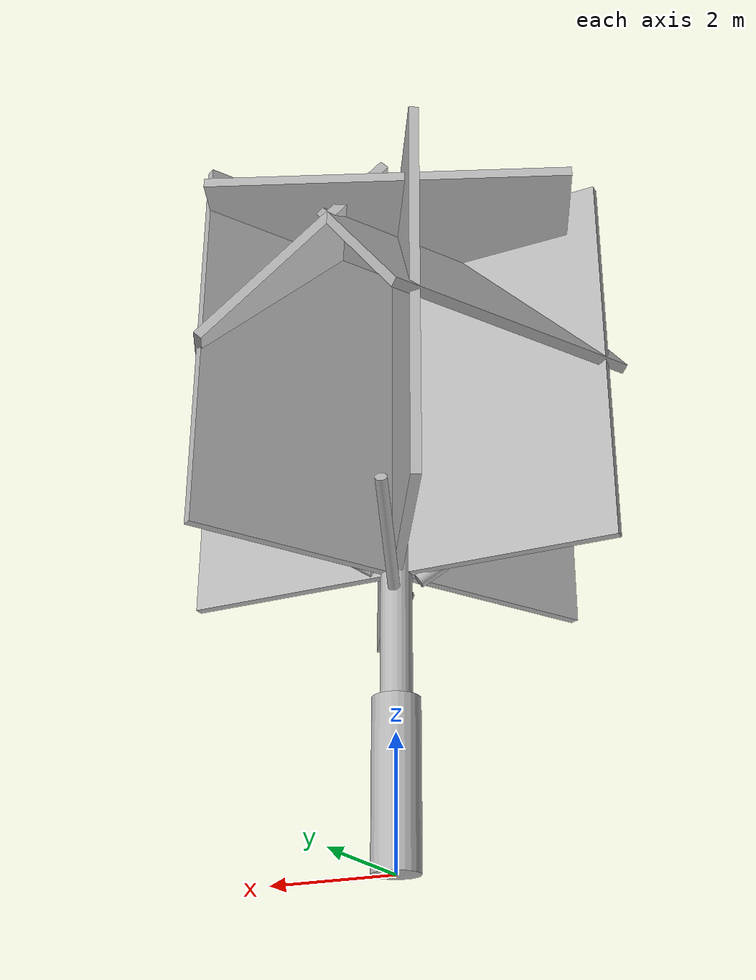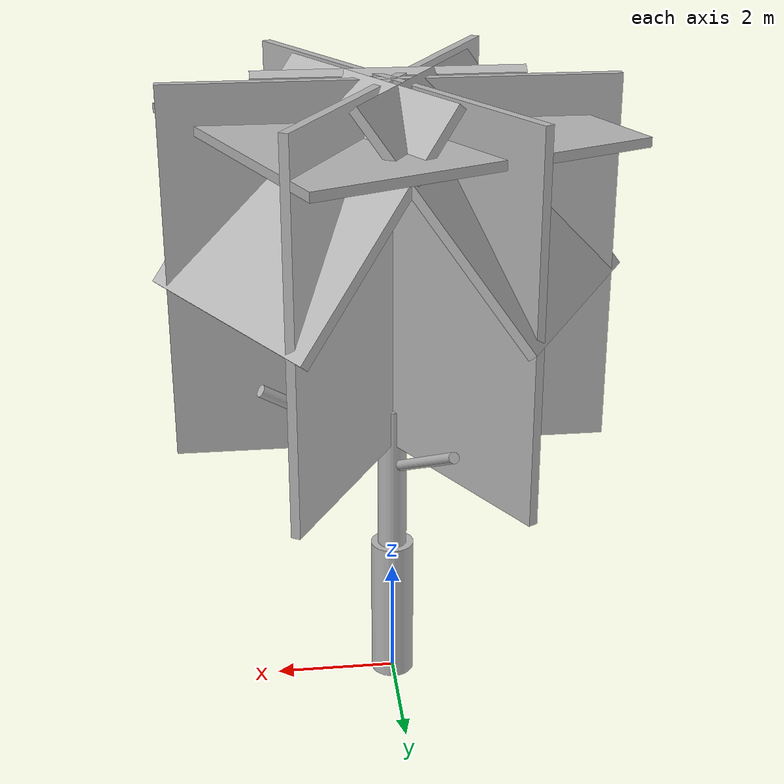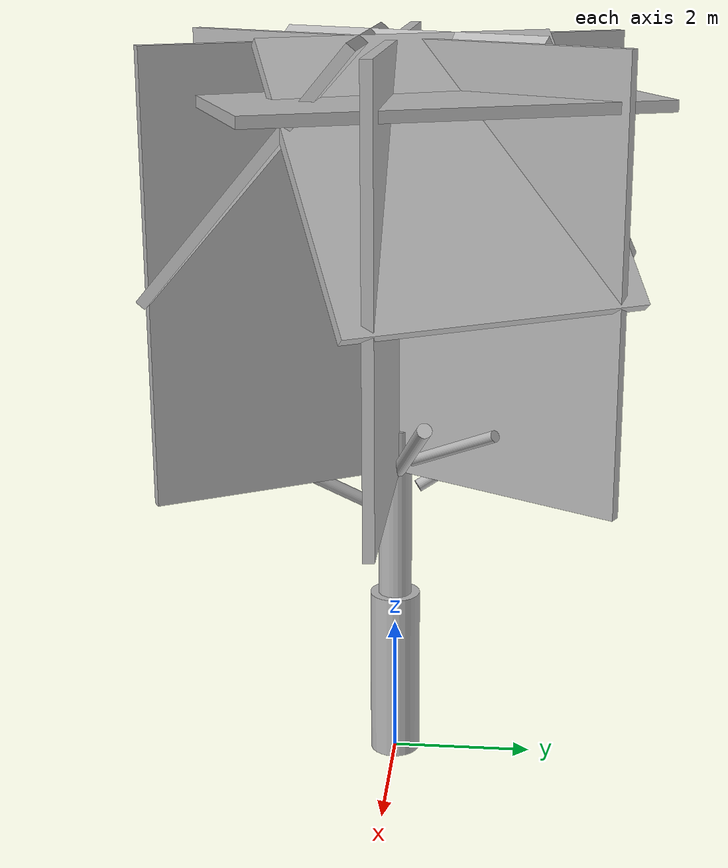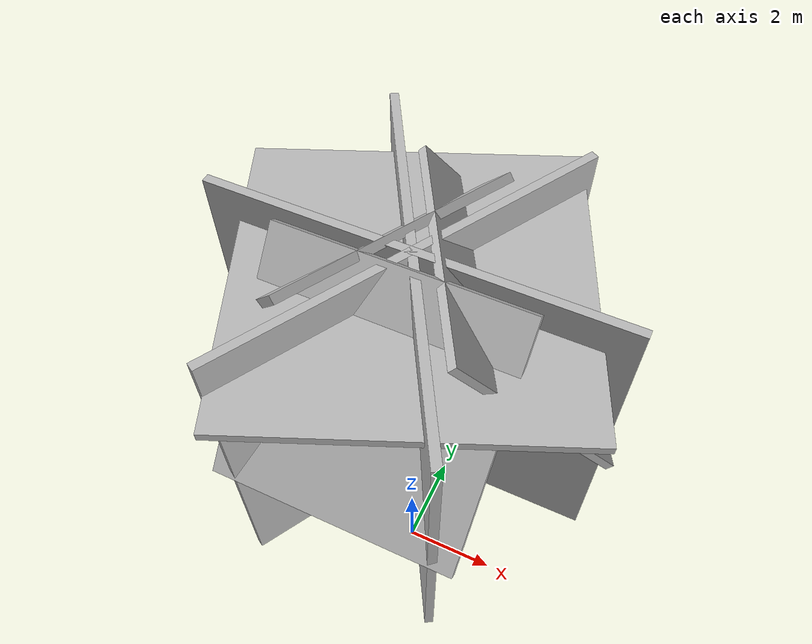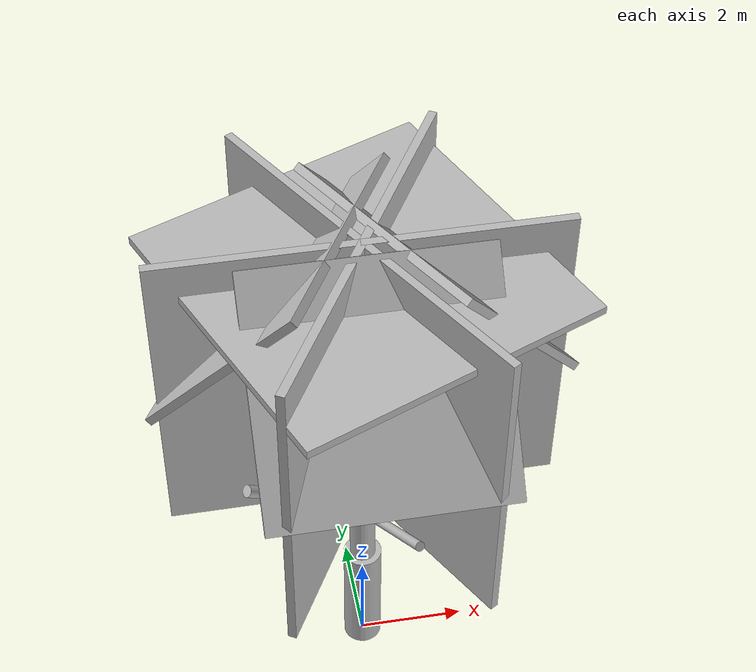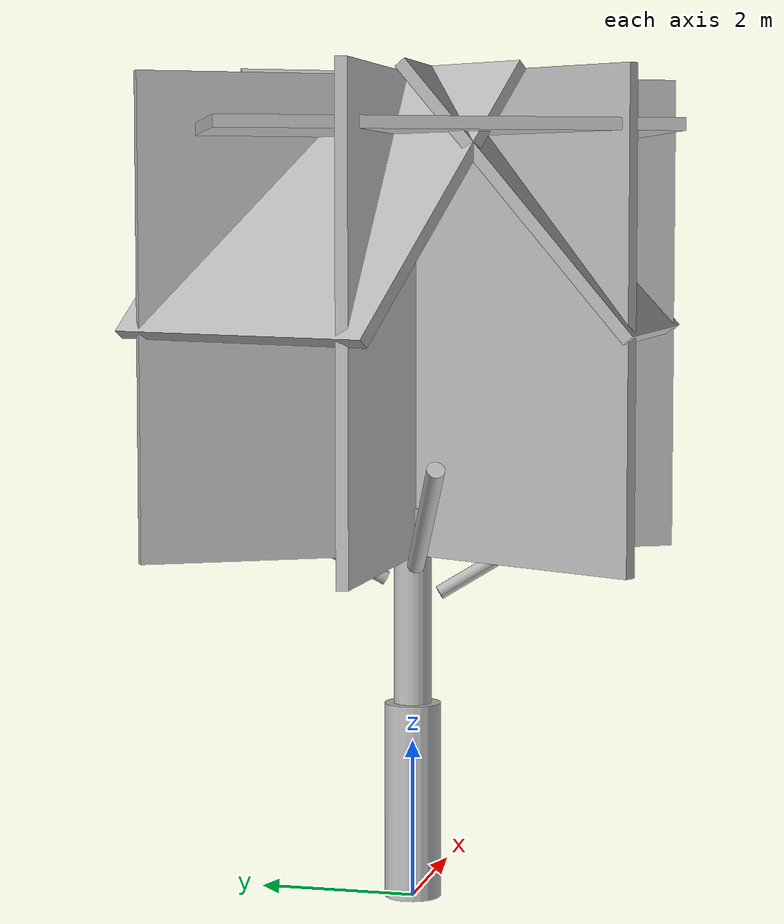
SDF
<?xml version="1.0" ?>
<sdf version="1.9">
  <model name="realistic_tree_mahogany">
    <static>true</static>
    <link name="body">

      <!-- ================= BATANG (trunk) — 2 segmen agar sedikit meruncing ================= -->
      <visual name="trunk_lower">
        <pose>0 0 1.25 0 0 0</pose>
        <geometry><cylinder><radius>0.36</radius><length>2.5</length></cylinder></geometry>
        <material>
          <pbr>
            <metal>
              <albedo_map>model://realistic_tree_mahogany/materials/textures/bark_albedo.png</albedo_map>
              <normal_map>model://realistic_tree_mahogany/materials/textures/bark_normal.png</normal_map>
              <roughness_map>model://realistic_tree_mahogany/materials/textures/bark_roughness.png</roughness_map>
            </metal>
          </pbr>
        </material>
      </visual>
      <visual name="trunk_upper">
        <pose>0 0 3.75 0 0 0</pose>
        <geometry><cylinder><radius>0.24</radius><length>2.5</length></cylinder></geometry>
        <material>
          <pbr>
            <metal>
              <albedo_map>model://realistic_tree_mahogany/materials/textures/bark_albedo.png</albedo_map>
              <normal_map>model://realistic_tree_mahogany/materials/textures/bark_normal.png</normal_map>
              <roughness_map>model://realistic_tree_mahogany/materials/textures/bark_roughness.png</roughness_map>
            </metal>
          </pbr>
        </material>
      </visual>

      <!-- ================= CABANG (branches) ================= -->
      <visual name="branch_1">
        <pose>1.229 0.329 5.083 0 1.012 0.262</pose>
        <geometry><cylinder><radius>0.10</radius><length>2.2</length></cylinder></geometry>
        <material><pbr><metal>
          <albedo_map>model://realistic_tree_mahogany/materials/textures/bark_albedo.png</albedo_map>
          <normal_map>model://realistic_tree_mahogany/materials/textures/bark_normal.png</normal_map>
        </metal></pbr></material>
      </visual>
      <visual name="branch_2">
        <pose>-0.418 1.149 4.569 0 1.082 1.920</pose>
        <geometry><cylinder><radius>0.09</radius><length>2.0</length></cylinder></geometry>
        <material><pbr><metal>
          <albedo_map>model://realistic_tree_mahogany/materials/textures/bark_albedo.png</albedo_map>
          <normal_map>model://realistic_tree_mahogany/materials/textures/bark_normal.png</normal_map>
        </metal></pbr></material>
      </visual>
      <visual name="branch_3">
        <pose>-1.243 -0.452 4.988 0 0.960 3.491</pose>
        <geometry><cylinder><radius>0.11</radius><length>2.4</length></cylinder></geometry>
        <material><pbr><metal>
          <albedo_map>model://realistic_tree_mahogany/materials/textures/bark_albedo.png</albedo_map>
          <normal_map>model://realistic_tree_mahogany/materials/textures/bark_normal.png</normal_map>
        </metal></pbr></material>
      </visual>
      <visual name="branch_4">
        <pose>0.398 -1.093 4.375 0 1.047 5.061</pose>
        <geometry><cylinder><radius>0.09</radius><length>1.9</length></cylinder></geometry>
        <material><pbr><metal>
          <albedo_map>model://realistic_tree_mahogany/materials/textures/bark_albedo.png</albedo_map>
          <normal_map>model://realistic_tree_mahogany/materials/textures/bark_normal.png</normal_map>
        </metal></pbr></material>
      </visual>
      <visual name="branch_5">
        <pose>0.714 0.851 4.959 0 1.134 0.873</pose>
        <geometry><cylinder><radius>0.08</radius><length>1.7</length></cylinder></geometry>
        <material><pbr><metal>
          <albedo_map>model://realistic_tree_mahogany/materials/textures/bark_albedo.png</albedo_map>
          <normal_map>model://realistic_tree_mahogany/materials/textures/bark_normal.png</normal_map>
        </metal></pbr></material>
      </visual>

      <visual name="canopy_vert_1">
        <pose>0 0 7.4 0 0 0</pose>
        <geometry><box><size>7.0 0.15 6.0</size></box></geometry>
        <material>
          <double_sided>true</double_sided>
          <pbr><metal><albedo_map>model://realistic_tree_mahogany/materials/textures/leaf_albedo.png</albedo_map></metal></pbr>
        </material>
      </visual>
      <visual name="canopy_vert_2">
        <pose>0 0 7.4 0 0 1.0472</pose>
        <geometry><box><size>7.0 0.15 6.0</size></box></geometry>
        <material>
          <double_sided>true</double_sided>
          <pbr><metal><albedo_map>model://realistic_tree_mahogany/materials/textures/leaf_albedo.png</albedo_map></metal></pbr>
        </material>
      </visual>
      <visual name="canopy_vert_3">
        <pose>0 0 7.4 0 0 2.0944</pose>
        <geometry><box><size>7.0 0.15 6.0</size></box></geometry>
        <material>
          <double_sided>true</double_sided>
          <pbr><metal><albedo_map>model://realistic_tree_mahogany/materials/textures/leaf_albedo.png</albedo_map></metal></pbr>
        </material>
      </visual>

      <visual name="canopy_shoulder_1">
        <pose>1.460 0.843 8.814 0 0.8727 0.5236</pose>
        <geometry><box><size>4.2 4.2 0.15</size></box></geometry>
        <material>
          <double_sided>true</double_sided>
          <pbr><metal><albedo_map>model://realistic_tree_mahogany/materials/textures/leaf_albedo.png</albedo_map></metal></pbr>
        </material>
      </visual>
      <visual name="canopy_shoulder_2">
        <pose>-1.460 0.843 8.814 0 0.8727 2.6180</pose>
        <geometry><box><size>4.2 4.2 0.15</size></box></geometry>
        <material>
          <double_sided>true</double_sided>
          <pbr><metal><albedo_map>model://realistic_tree_mahogany/materials/textures/leaf_albedo.png</albedo_map></metal></pbr>
        </material>
      </visual>
      <visual name="canopy_shoulder_3">
        <pose>0 -1.685 8.814 0 0.8727 4.7124</pose>
        <geometry><box><size>4.2 4.2 0.15</size></box></geometry>
        <material>
          <double_sided>true</double_sided>
          <pbr><metal><albedo_map>model://realistic_tree_mahogany/materials/textures/leaf_albedo.png</albedo_map></metal></pbr>
        </material>
      </visual>

      <visual name="canopy_top_cap">
        <pose>0 0 9.7 0 0 0.4</pose>
        <geometry><box><size>5.5 5.5 0.15</size></box></geometry>
        <material>
          <double_sided>true</double_sided>
          <pbr><metal><albedo_map>model://realistic_tree_mahogany/materials/textures/leaf_albedo.png</albedo_map></metal></pbr>
        </material>
      </visual>

      <collision name="trunk_collision">
        <pose>0 0 2.5 0 0 0</pose>
        <geometry><cylinder><radius>0.42</radius><length>5.0</length></cylinder></geometry>
      </collision>
      <collision name="canopy_collision">
        <pose>0 0 7.4 0 0 0</pose>
        <geometry><ellipsoid><radii>4.0 4.0 3.2</radii></ellipsoid></geometry>
      </collision>

    </link>
  </model>
</sdf>
